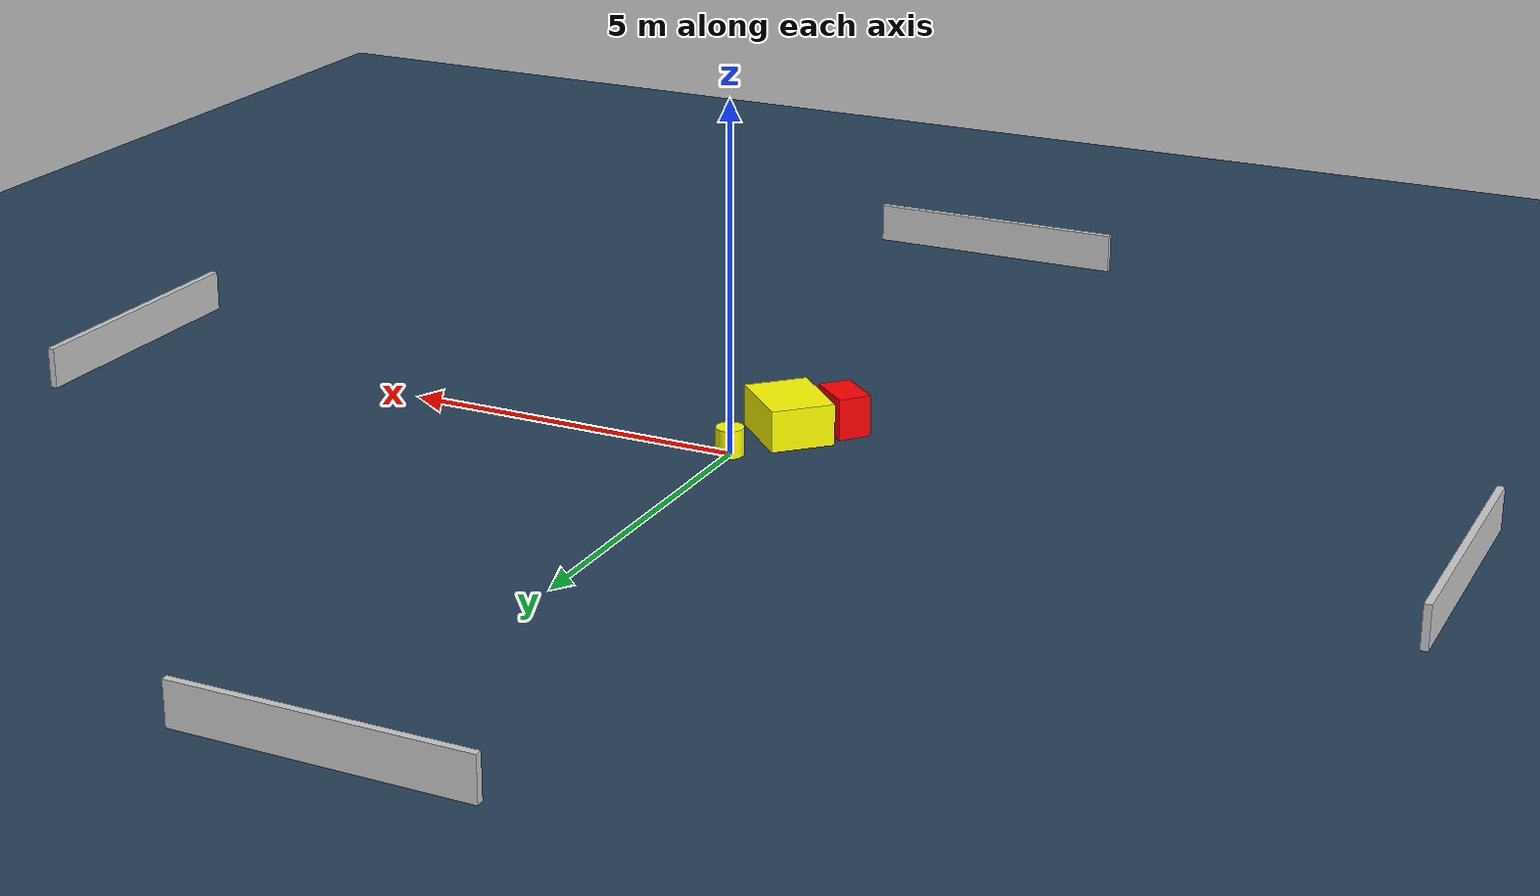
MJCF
<?xml version="1.0" ?>
<mujoco model="generated_environment">
  <option timestep="0.01" integrator="RK4" cone="elliptic"/>
  <default>
    <geom density="1"/>
  </default>
  <asset>
    <texture builtin="gradient" height="3072" name="skybox" rgb1="0.3 0.5 0.7" rgb2="0 0 0" type="skybox" width="512"/>
    <texture builtin="checker" height="300" name="groundplane" rgb1="0.2 0.3 0.4" rgb2="0.1 0.2 0.3" type="2d" width="300"/>
    <material name="groundplane" reflectance="0.2" texrepeat="5 5" texture="groundplane"/>
  </asset>
  <worldbody>
    <light dir="0 0 -1" directional="true" pos="0 0 1.5"/>
    <geom condim="3" friction="0.5 0.005 0.001" material="groundplane" name="floor" pos="0 0 0" size="0 0 0.05" type="plane"/>
    <body name="walls">
      <geom name="wall_1" condim="4" pos="-10.0 0.0 0.3" rgba="0.800000011920929 0.800000011920929 0.800000011920929 1.0" size="0.05 2.0 0.3" type="box"/>
      <geom name="wall_2" condim="4" pos="10.0 0.0 0.3" rgba="0.800000011920929 0.800000011920929 0.800000011920929 1.0" size="0.05 2.0 0.3" type="box"/>
      <geom name="wall_3" condim="4" pos="0.0 -10.0 0.3" rgba="0.800000011920929 0.800000011920929 0.800000011920929 1.0" size="2.0 0.05 0.3" type="box"/>
      <geom name="wall_4" condim="4" pos="0.0 10.0 0.3" rgba="0.800000011920929 0.800000011920929 0.800000011920929 1.0" size="2.0 0.05 0.3" type="box"/>
    </body>
    <body name="robot">
      <joint name="joint_x" type="slide" pos="0 0 0" axis="1 0 0"/>
      <joint name="joint_y" type="slide" pos="0 0 0" axis="0 1 0"/>
      <geom name="robot" type="cylinder" pos="0.0 0.0 0.2" size="0.2 0.2 0.0" mass="5.0" friction="1.0 0.005 0.0001" condim="4" rgba="1.0 1.0 0.0 1.0"/>
    </body>
    <body name="obstacle_1_movable">
      <geom name="obstacle_1_movable" condim="4" pos="-0.4227406148208156 -1.0114615515802114 0.3" euler="0 0 44.76801935857414" friction="0.0 0.005 0.001" rgba="1.0 1.0 0.0 1.0" size="0.46324635272556 0.5684881036308211 0.3" type="box" mass="0.1"/>
      <joint type="free"/>
    </body>
    <body name="obstacle_2_static">
      <geom name="obstacle_2_static" condim="4" pos="-1.0326978062448275 -1.5217479381946712 0.3" euler="0 0 228.84207571769653" friction="0.0 0.005 0.001" rgba="1.0 0.0 0.0 1.0" size="0.23865784305797189 0.349920738342269 0.3" type="box"/>
    </body>
  </worldbody>
  <actuator>
    <motor name="actuator_x" joint="joint_x" gear="1" ctrlrange="-1 1"/>
    <motor name="actuator_y" joint="joint_y" gear="1" ctrlrange="-1 1"/>
  </actuator>
</mujoco>
